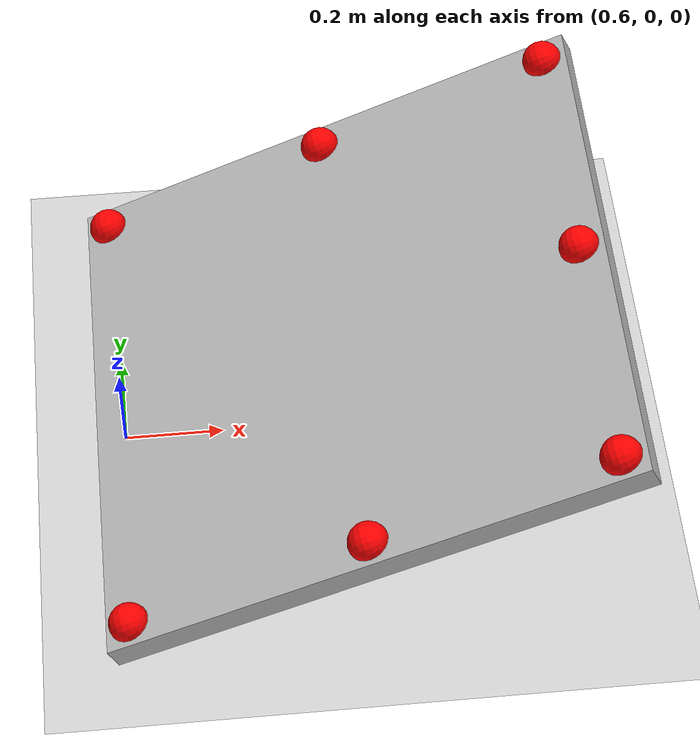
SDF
<sdf version="1.5">
 <world name="default">
  <include><uri>model://sun</uri></include>
  <include><uri>model://ground_plane</uri></include>
  <include><uri>model://asphalt_plane</uri></include>
  <physics name="default_physics" default="0" type="ode">
   <gravity>0 0 -9.8066</gravity>
   <ode>
    <solver>
     <type>quick</type>
     <iters>50</iters>
     <sor>1.0</sor>
     <use_dynamic_moi_rescaling>0</use_dynamic_moi_rescaling>
    </solver>
    <constraints>
     <cfm>0</cfm>
     <erp>0.2</erp>
     <contact_max_correcting_vel>100</contact_max_correcting_vel>
     <contact_surface_layer>0.001</contact_surface_layer>
    </constraints>
   </ode>
   <max_step_size>0.002</max_step_size>
   <real_time_factor>1</real_time_factor>
   <real_time_update_rate>500</real_time_update_rate>
   <magnetic_field>6.0e-6 2.3e-5 -4.2e-5</magnetic_field>
  </physics>
  <include><pose>1.5 0 0.5 2.0 0 -1.5708</pose><uri>model://platform</uri></include>
 </world>
</sdf>

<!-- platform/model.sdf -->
<sdf version="1.5">
  <model name="platform">
    <static>true</static>
    <link name="body">
      <visual name="base">
        <pose>0 -0.025 0.5 0 0 0</pose>
        <geometry>
          <box>
            <size>1.1 0.05 1.1</size>
          </box>
        </geometry>
      </visual>

      <visual name="beacon_1">
        <pose>-0.5 0 0 0 0 0</pose>
        <geometry>
          <sphere>
            <radius>0.04</radius>
          </sphere>
        </geometry>
        <material>
          <ambient>1 0 0 1</ambient>
          <diffuse>1 0 0 1</diffuse>
          <specular>0.1 0.1 0.1 1</specular>
          <emissive>0 0 0 0</emissive>
        </material>
      </visual>

      <visual name="beacon_2">
        <pose>0 0 0 0 0 0</pose>
        <geometry>
          <sphere>
            <radius>0.04</radius>
          </sphere>
        </geometry>
        <material>
          <ambient>1 0 0 1</ambient>
          <diffuse>1 0 0 1</diffuse>
          <specular>0.1 0.1 0.1 1</specular>
          <emissive>0 0 0 0</emissive>
        </material>
      </visual>

      <visual name="beacon_3">
        <pose>0.5 0 0 0 0 0</pose>
        <geometry>
          <sphere>
            <radius>0.04</radius>
          </sphere>
        </geometry>
        <material>
          <ambient>1 0 0 1</ambient>
          <diffuse>1 0 0 1</diffuse>
          <specular>0.1 0.1 0.1 1</specular>
          <emissive>0 0 0 0</emissive>
        </material>
      </visual>

      <visual name="beacon_4">
        <pose>0.5 0 0.5 0 0 0</pose>
        <geometry>
          <sphere>
            <radius>0.04</radius>
          </sphere>
        </geometry>
        <material>
          <ambient>1 0 0 1</ambient>
          <diffuse>1 0 0 1</diffuse>
          <specular>0.1 0.1 0.1 1</specular>
          <emissive>0 0 0 0</emissive>
        </material>
      </visual>

      <visual name="beacon_5">
        <pose>-0.5 0 0.5 0 0 0</pose>
        <geometry>
          <sphere>
            <radius>0.04</radius>
          </sphere>
        </geometry>
        <material>
          <ambient>1 0 0 1</ambient>
          <diffuse>1 0 0 1</diffuse>
          <specular>0.1 0.1 0.1 1</specular>
          <emissive>0 0 0 0</emissive>
        </material>
      </visual>

      <visual name="beacon_6">
        <pose>0.5 0 1 0 0 0</pose>
        <geometry>
          <sphere>
            <radius>0.04</radius>
          </sphere>
        </geometry>
        <material>
          <ambient>1 0 0 1</ambient>
          <diffuse>1 0 0 1</diffuse>
          <specular>0.1 0.1 0.1 1</specular>
          <emissive>0 0 0 0</emissive>
        </material>
      </visual>

      <visual name="beacon_7">
        <pose>-0.5 0 1 0 0 0</pose>
        <geometry>
          <sphere>
            <radius>0.04</radius>
          </sphere>
        </geometry>
        <material>
          <ambient>1 0 0 1</ambient>
          <diffuse>1 0 0 1</diffuse>
          <specular>0.1 0.1 0.1 1</specular>
          <emissive>0 0 0 0</emissive>
        </material>
      </visual>
    </link>
  </model>
</sdf>
